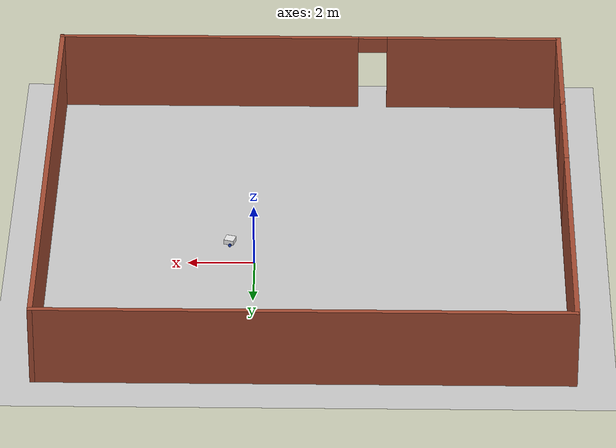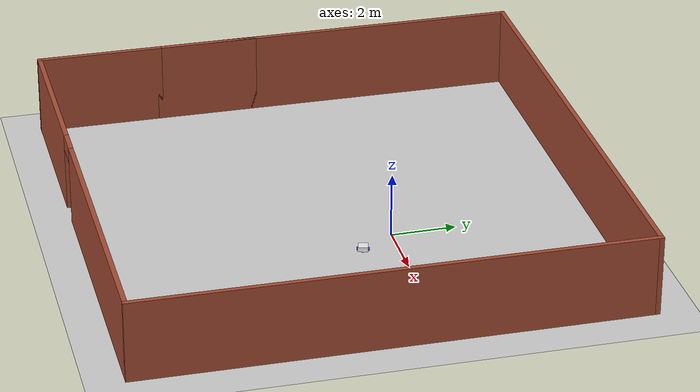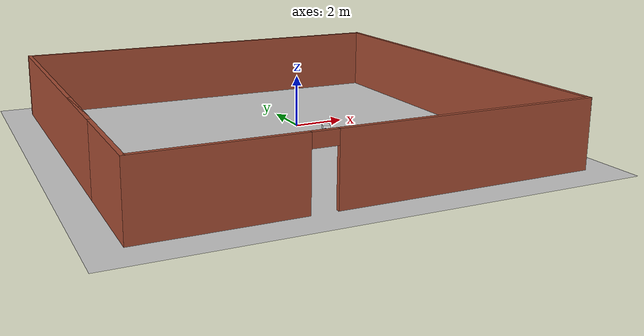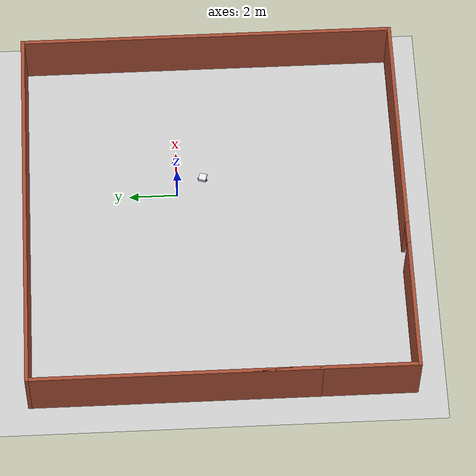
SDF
<sdf version="1.7">
 <world name="default">
  <light name="sun" type="directional">
   <pose>0 0 10 0 -0 0</pose>
   <diffuse>0.8 0.8 0.8 1</diffuse>
   <specular>0.2 0.2 0.2 1</specular>
   <attenuation>
    <range>1000</range>
    <constant>0.9</constant>
    <linear>0.01</linear>
    <quadratic>0.001</quadratic>
   </attenuation>
   <direction>-0.5 0.1 -0.9</direction>
   <spot><inner_angle>0</inner_angle><outer_angle>0</outer_angle><falloff>0</falloff></spot>
  </light>
  <model name="ground_plane">
   <static>1</static>
   <link name="link">
    <collision name="collision">
     <geometry><plane><normal>0 0 1</normal><size>100 100</size></plane></geometry>
     <surface>
      <contact><collide_bitmask>65535</collide_bitmask></contact>
      <friction><ode><mu>100</mu><mu2>50</mu2></ode></friction>
     </surface>
    </collision>
    <visual name="visual">
     <cast_shadows>0</cast_shadows>
     <geometry><plane><normal>0 0 1</normal><size>100 100</size></plane></geometry>
     <material>
      <script><uri>file://media/materials/scripts/gazebo.material</uri><name>Gazebo/Grey</name></script>
     </material>
    </visual>
   </link>
  </model>
  <gravity>0 0 -9.8</gravity>
  <magnetic_field>6e-06 2.3e-05 -4.2e-05</magnetic_field>
  <atmosphere type="adiabatic"/>
  <physics type="ode">
   <max_step_size>0.001</max_step_size>
   <real_time_factor>1</real_time_factor>
   <real_time_update_rate>1000</real_time_update_rate>
  </physics>
  <scene><ambient>0.4 0.4 0.4 1</ambient><background>0.7 0.7 0.7 1</background><shadows>1</shadows></scene>
  <audio><device>default</device></audio>
  <spherical_coordinates>
   <surface_model>EARTH_WGS84</surface_model>
   <latitude_deg>0</latitude_deg>
   <longitude_deg>0</longitude_deg>
   <elevation>0</elevation>
   <heading_deg>0</heading_deg>
  </spherical_coordinates>
  <model name="my_bot">
   <link name="base_link">
    <inertial>
     <pose>0.065 0 0.0625 0 -0 0</pose>
     <mass>0.6</mass>
     <inertia>
      <ixx>0.00525625</ixx>
      <ixy>0</ixy>
      <ixz>0.0005625</ixz>
      <iyy>0.00593125</iyy>
      <iyz>0</iyz>
      <izz>0.008275</izz>
     </inertia>
    </inertial>
    <collision name="base_link_fixed_joint_lump__chassis_collision">
     <pose>0.05 0 0.075 0 -0 0</pose>
     <geometry><box><size>0.3 0.3 0.15</size></box></geometry>
    </collision>
    <collision name="base_link_fixed_joint_lump__caster_wheel_collision_1">
     <pose>0.14 0 0 0 -0 0</pose>
     <geometry><sphere><radius>0.05</radius></sphere></geometry>
     <surface><friction><ode><mu>0.001</mu><mu2>0.001</mu2></ode></friction></surface>
    </collision>
    <visual name="base_link_fixed_joint_lump__chassis_visual">
     <pose>0.05 0 0.075 0 -0 0</pose>
     <geometry><box><size>0.3 0.3 0.15</size></box></geometry>
     <material>
      <script><name>Gazebo/White</name><uri>file://media/materials/scripts/gazebo.material</uri></script>
     </material>
    </visual>
    <visual name="base_link_fixed_joint_lump__caster_wheel_visual_1">
     <pose>0.14 0 0 0 -0 0</pose>
     <geometry><sphere><radius>0.05</radius></sphere></geometry>
     <material>
      <script><name>Gazebo/Black</name><uri>file://media/materials/scripts/gazebo.material</uri></script>
     </material>
    </visual>
   </link>
   <joint name="left_wheel_joint" type="revolute">
    <pose relative_to="base_link">0 0.175 0 -1.5708 0 0</pose>
    <parent>base_link</parent>
    <child>left_wheel</child>
    <axis>
     <xyz>0 0 1</xyz>
     <limit><lower>-1e+16</lower><upper>1e+16</upper></limit>
     <dynamics><spring_reference>0</spring_reference><spring_stiffness>0</spring_stiffness></dynamics>
    </axis>
   </joint>
   <link name="left_wheel">
    <pose relative_to="left_wheel_joint">0 0 0 0 -0 0</pose>
    <inertial>
     <mass>0.1</mass>
     <inertia>
      <ixx>7.58333e-05</ixx>
      <ixy>0</ixy>
      <ixz>0</ixz>
      <iyy>7.58333e-05</iyy>
      <iyz>0</iyz>
      <izz>0.000125</izz>
     </inertia>
    </inertial>
    <collision name="left_wheel_collision">
     <geometry><cylinder><length>0.04</length><radius>0.05</radius></cylinder></geometry>
    </collision>
    <visual name="left_wheel_visual">
     <geometry><cylinder><length>0.04</length><radius>0.05</radius></cylinder></geometry>
     <material>
      <script><name>Gazebo/Blue</name><uri>file://media/materials/scripts/gazebo.material</uri></script>
     </material>
    </visual>
   </link>
   <joint name="right_wheel_joint" type="revolute">
    <pose relative_to="base_link">0 -0.175 0 1.5708 -0 0</pose>
    <parent>base_link</parent>
    <child>right_wheel</child>
    <axis>
     <xyz>0 0 1</xyz>
     <limit><lower>-1e+16</lower><upper>1e+16</upper></limit>
     <dynamics><spring_reference>0</spring_reference><spring_stiffness>0</spring_stiffness></dynamics>
    </axis>
   </joint>
   <link name="right_wheel">
    <pose relative_to="right_wheel_joint">0 0 0 0 -0 0</pose>
    <inertial>
     <mass>0.1</mass>
     <inertia>
      <ixx>7.58333e-05</ixx>
      <ixy>0</ixy>
      <ixz>0</ixz>
      <iyy>7.58333e-05</iyy>
      <iyz>0</iyz>
      <izz>0.000125</izz>
     </inertia>
    </inertial>
    <collision name="right_wheel_collision">
     <geometry><cylinder><length>0.04</length><radius>0.05</radius></cylinder></geometry>
    </collision>
    <visual name="right_wheel_visual">
     <geometry><cylinder><length>0.04</length><radius>0.05</radius></cylinder></geometry>
     <material>
      <script><name>Gazebo/Blue</name><uri>file://media/materials/scripts/gazebo.material</uri></script>
     </material>
    </visual>
   </link>
   <static>0</static>
   <plugin name="diff_drive" filename="libgazebo_ros_diff_drive.so">
    <left_joint>left_wheel_joint</left_joint>
    <right_joint>right_wheel_joint</right_joint>
    <wheel_separation>0.35</wheel_separation>
    <wheel_diameter>0.1</wheel_diameter>
    <max_wheel_torque>200</max_wheel_torque>
    <max_wheel_acceleration>10.0</max_wheel_acceleration>
    <odometry_frame>odom</odometry_frame>
    <robot_base_frame>base_link</robot_base_frame>
    <publish_odom>1</publish_odom>
    <publish_odom_tf>1</publish_odom_tf>
    <publish_wheel_tf>1</publish_wheel_tf>
   </plugin>
   <pose>0.711084 -1.06046 0.05 0 1.7e-05 -0.285148</pose>
  </model>
  <model name="building.model">
   <pose>-1.55657 -1.4644 0 0 -0 0</pose>
   <link name="Wall_25">
    <collision name="Wall_25_Collision">
     <geometry><box><size>4 0.15 2.5</size></box></geometry>
     <pose>0 0 1.25 0 -0 0</pose>
    </collision>
    <visual name="Wall_25_Visual">
     <pose>0 0 1.25 0 -0 0</pose>
     <geometry><box><size>4 0.15 2.5</size></box></geometry>
     <material>
      <script><uri>file://media/materials/scripts/gazebo.material</uri><name>Gazebo/Bricks</name></script>
      <ambient>1 1 1 1</ambient>
     </material>
     <meta><layer>0</layer></meta>
    </visual>
    <pose>-7.8 -5.75 0 0 -0 -1.5708</pose>
   </link>
   <link name="Wall_26">
    <pose>-0 -7.675 0 0 -0 0</pose>
    <visual name="Wall_26_Visual_0">
     <pose>-5.14489 0 1.25 0 -0 0</pose>
     <geometry><box><size>5.46021 0.15 2.5</size></box></geometry>
     <material>
      <script><uri>file://media/materials/scripts/gazebo.material</uri><name>Gazebo/Bricks</name></script>
      <ambient>1 1 1 1</ambient>
     </material>
     <meta><layer>0</layer></meta>
    </visual>
    <collision name="Wall_26_Collision_0">
     <geometry><box><size>5.46021 0.15 2.5</size></box></geometry>
     <pose>-5.14489 0 1.25 0 -0 0</pose>
    </collision>
    <visual name="Wall_26_Visual_1">
     <pose>3.18011 0 1.25 0 -0 0</pose>
     <geometry><box><size>9.38978 0.15 2.5</size></box></geometry>
     <material>
      <script><uri>file://media/materials/scripts/gazebo.material</uri><name>Gazebo/Bricks</name></script>
      <ambient>1 1 1 1</ambient>
     </material>
     <meta><layer>0</layer></meta>
    </visual>
    <collision name="Wall_26_Collision_1">
     <geometry><box><size>9.38978 0.15 2.5</size></box></geometry>
     <pose>3.18011 0 1.25 0 -0 0</pose>
    </collision>
    <visual name="Wall_26_Visual_2">
     <pose>-1.96479 0 2.25 0 -0 0</pose>
     <geometry><box><size>0.9 0.15 0.5</size></box></geometry>
     <material>
      <script><uri>file://media/materials/scripts/gazebo.material</uri><name>Gazebo/Bricks</name></script>
      <ambient>1 1 1 1</ambient>
     </material>
     <meta><layer>0</layer></meta>
    </visual>
    <collision name="Wall_26_Collision_2">
     <geometry><box><size>0.9 0.15 0.5</size></box></geometry>
     <pose>-1.96479 0 2.25 0 -0 0</pose>
    </collision>
   </link>
   <link name="Wall_27">
    <collision name="Wall_27_Collision">
     <geometry><box><size>15.5 0.15 2.5</size></box></geometry>
     <pose>0 0 1.25 0 -0 0</pose>
    </collision>
    <visual name="Wall_27_Visual">
     <pose>0 0 1.25 0 -0 0</pose>
     <geometry><box><size>15.5 0.15 2.5</size></box></geometry>
     <material>
      <script><uri>file://media/materials/scripts/gazebo.material</uri><name>Gazebo/Bricks</name></script>
      <ambient>1 1 1 1</ambient>
     </material>
     <meta><layer>0</layer></meta>
    </visual>
    <pose>7.8 0 0 0 -0 1.5708</pose>
   </link>
   <link name="Wall_28">
    <collision name="Wall_28_Collision">
     <geometry><box><size>15.75 0.15 2.5</size></box></geometry>
     <pose>0 0 1.25 0 -0 0</pose>
    </collision>
    <visual name="Wall_28_Visual">
     <pose>0 0 1.25 0 -0 0</pose>
     <geometry><box><size>15.75 0.15 2.5</size></box></geometry>
     <material>
      <script><uri>file://media/materials/scripts/gazebo.material</uri><name>Gazebo/Bricks</name></script>
      <ambient>1 1 1 1</ambient>
     </material>
     <meta><layer>0</layer></meta>
    </visual>
    <pose>-0 7.675 0 0 -0 3.14159</pose>
   </link>
   <link name="Wall_29">
    <collision name="Wall_29_Collision">
     <geometry><box><size>11.65 0.15 2.5</size></box></geometry>
     <pose>0 0 1.25 0 -0 0</pose>
    </collision>
    <visual name="Wall_29_Visual">
     <pose>0 0 1.25 0 -0 0</pose>
     <geometry><box><size>11.65 0.15 2.5</size></box></geometry>
     <material>
      <script><uri>file://media/materials/scripts/gazebo.material</uri><name>Gazebo/Bricks</name></script>
      <ambient>1 1 1 1</ambient>
     </material>
     <meta><layer>0</layer></meta>
    </visual>
    <pose>-7.8 1.925 0 0 -0 -1.5708</pose>
   </link>
   <link name="Wall_30">
    <collision name="Wall_30_Collision">
     <geometry><box><size>3.25 0.15 2.5</size></box></geometry>
     <pose>0 0 1.25 0 -0 0</pose>
    </collision>
    <visual name="Wall_30_Visual">
     <pose>0 0 1.25 0 -0 0</pose>
     <geometry><box><size>3.25 0.15 2.5</size></box></geometry>
     <material>
      <script><uri>file://media/materials/scripts/gazebo.material</uri><name>Gazebo/Bricks</name></script>
      <ambient>1 1 1 1</ambient>
     </material>
     <meta><layer>0</layer></meta>
    </visual>
    <pose>-7.8 -2.275 0 0 -0 1.5708</pose>
   </link>
   <static>1</static>
  </model>
 </world>
</sdf>
